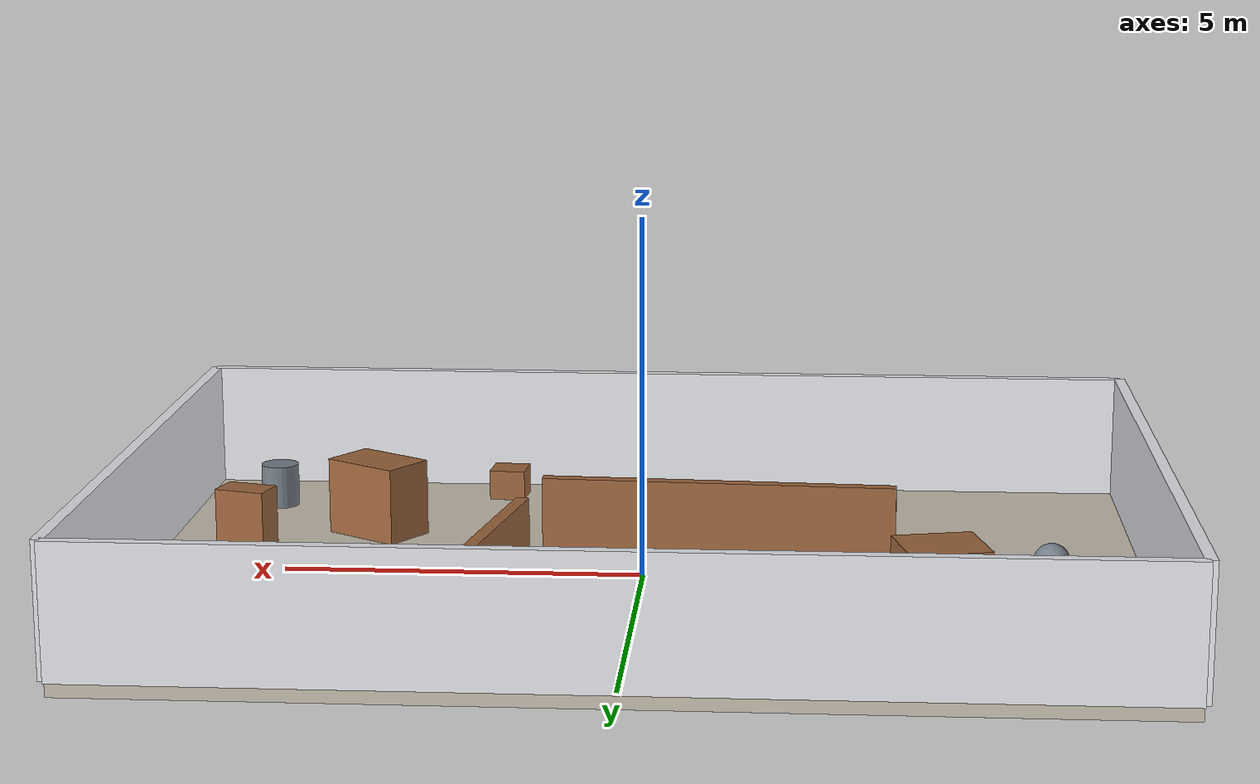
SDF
<?xml version='1.0' encoding='utf-8'?>
<sdf version="1.7">
  <world name="flat_1">
    <gravity>0 0 -9.8</gravity>
    <plugin name="gazebo_ros_state" filename="libgazebo_ros_state.so">
      <ros>
        <namespace>/gazebo</namespace>
      </ros>
    </plugin>
    <physics name="ode_physics" type="ode">
      <max_step_size>0.001</max_step_size>
      <real_time_factor>1</real_time_factor>
      <real_time_update_rate>1000</real_time_update_rate>
      <ode>
        <solver>
          <type>quick</type>
          <iters>150</iters>
          <sor>1.3</sor>
        </solver>
        <constraints>
          <cfm>0</cfm>
          <erp>0.2</erp>
          <contact_max_correcting_vel>0.2</contact_max_correcting_vel>
          <contact_surface_layer>0.001</contact_surface_layer>
        </constraints>
      </ode>
    </physics>
    <light name="sun" type="directional">
      <pose>0 0 28 0 0 0</pose>
      <diffuse>0.92 0.91 0.88 1</diffuse>
      <specular>0.18 0.18 0.16 1</specular>
      <direction>-0.35 -0.28 -0.9</direction>
      <cast_shadows>true</cast_shadows>
    </light>
    <light name="fill" type="point">
      <pose>0 0 6 0 0 0</pose>
      <diffuse>0.35 0.36 0.34 1</diffuse>
      <specular>0.02 0.02 0.02 1</specular>
      <cast_shadows>false</cast_shadows>
      <attenuation>
        <range>80</range>
        <constant>0.5</constant>
        <linear>0.02</linear>
      </attenuation>
    </light>
    <scene>
      <ambient>0.50 0.49 0.47 1</ambient>
      <background>0.80 0.82 0.86 1</background>
    </scene>
    <gui fullscreen="false">
      <camera name="user_camera">
        <pose>9.8 -9 11.9 0 0.65 2.2</pose>
        <view_controller>orbit</view_controller>
      </camera>
    </gui>
    <model name="flat_1_structure">
      <static>true</static>
      <link name="structure">
        <collision name="floor_collision">
          <pose>0 0 -0.1 0 0 0</pose>
          <geometry>
            <box>
              <size>14 10 0.2</size>
            </box>
          </geometry>
          <max_contacts>40</max_contacts>
          <surface>
            <friction>
              <ode>
                <mu>2</mu>
                <mu2>2</mu2>
              </ode>
            </friction>
            <contact>
              <ode>
                <kp>1e7</kp>
                <kd>1000</kd>
                <max_vel>0.1</max_vel>
                <min_depth>0.001</min_depth>
              </ode>
            </contact>
          </surface>
        </collision>
        <visual name="floor_visual">
          <pose>0 0 -0.1 0 0 0</pose>
          <geometry>
            <box>
              <size>14 10 0.2</size>
            </box>
          </geometry>
          <material>
            <ambient>0.78 0.74 0.68 1</ambient>
            <diffuse>0.78 0.74 0.68 1</diffuse>
          </material>
        </visual>
        <collision name="partition_0_collision">
          <pose>-1 -1 0.55 0 0 -0.0541946256</pose>
          <geometry>
            <box>
              <size>5 0.18 1.1</size>
            </box>
          </geometry>
          <max_contacts>40</max_contacts>
          <surface>
            <friction>
              <ode>
                <mu>2</mu>
                <mu2>2</mu2>
              </ode>
            </friction>
            <contact>
              <ode>
                <kp>1e7</kp>
                <kd>1000</kd>
                <max_vel>0.1</max_vel>
                <min_depth>0.001</min_depth>
              </ode>
            </contact>
          </surface>
        </collision>
        <visual name="partition_0_visual">
          <pose>-1 -1 0.55 0 0 -0.0541946256</pose>
          <geometry>
            <box>
              <size>5 0.18 1.1</size>
            </box>
          </geometry>
          <material>
            <ambient>0.62 0.40 0.24 1</ambient>
            <diffuse>0.62 0.40 0.24 1</diffuse>
          </material>
        </visual>
        <collision name="partition_1_collision">
          <pose>2 2 0.55 0 0 -0.171529491</pose>
          <geometry>
            <box>
              <size>0.18 4 1.1</size>
            </box>
          </geometry>
          <max_contacts>40</max_contacts>
          <surface>
            <friction>
              <ode>
                <mu>2</mu>
                <mu2>2</mu2>
              </ode>
            </friction>
            <contact>
              <ode>
                <kp>1e7</kp>
                <kd>1000</kd>
                <max_vel>0.1</max_vel>
                <min_depth>0.001</min_depth>
              </ode>
            </contact>
          </surface>
        </collision>
        <visual name="partition_1_visual">
          <pose>2 2 0.55 0 0 -0.171529491</pose>
          <geometry>
            <box>
              <size>0.18 4 1.1</size>
            </box>
          </geometry>
          <material>
            <ambient>0.62 0.40 0.24 1</ambient>
            <diffuse>0.62 0.40 0.24 1</diffuse>
          </material>
        </visual>
        <collision name="partition_2_collision">
          <pose>-4 2 0.55 0 0 0.23472169</pose>
          <geometry>
            <box>
              <size>1.1 1 1.1</size>
            </box>
          </geometry>
          <max_contacts>40</max_contacts>
          <surface>
            <friction>
              <ode>
                <mu>2</mu>
                <mu2>2</mu2>
              </ode>
            </friction>
            <contact>
              <ode>
                <kp>1e7</kp>
                <kd>1000</kd>
                <max_vel>0.1</max_vel>
                <min_depth>0.001</min_depth>
              </ode>
            </contact>
          </surface>
        </collision>
        <visual name="partition_2_visual">
          <pose>-4 2 0.55 0 0 0.23472169</pose>
          <geometry>
            <box>
              <size>1.1 1 1.1</size>
            </box>
          </geometry>
          <material>
            <ambient>0.62 0.40 0.24 1</ambient>
            <diffuse>0.62 0.40 0.24 1</diffuse>
          </material>
        </visual>
        <collision name="partition_3_collision">
          <pose>4 -2 0.55 0 0 -0.581548264</pose>
          <geometry>
            <box>
              <size>1.2 0.8 1.1</size>
            </box>
          </geometry>
          <max_contacts>40</max_contacts>
          <surface>
            <friction>
              <ode>
                <mu>2</mu>
                <mu2>2</mu2>
              </ode>
            </friction>
            <contact>
              <ode>
                <kp>1e7</kp>
                <kd>1000</kd>
                <max_vel>0.1</max_vel>
                <min_depth>0.001</min_depth>
              </ode>
            </contact>
          </surface>
        </collision>
        <visual name="partition_3_visual">
          <pose>4 -2 0.55 0 0 -0.581548264</pose>
          <geometry>
            <box>
              <size>1.2 0.8 1.1</size>
            </box>
          </geometry>
          <material>
            <ambient>0.62 0.40 0.24 1</ambient>
            <diffuse>0.62 0.40 0.24 1</diffuse>
          </material>
        </visual>
        <collision name="boundary_0_collision">
          <pose>0 -5 0.9 0 0 0</pose>
          <geometry>
            <box>
              <size>14 0.16 1.8</size>
            </box>
          </geometry>
          <max_contacts>40</max_contacts>
          <surface>
            <friction>
              <ode>
                <mu>2</mu>
                <mu2>2</mu2>
              </ode>
            </friction>
            <contact>
              <ode>
                <kp>1e7</kp>
                <kd>1000</kd>
                <max_vel>0.1</max_vel>
                <min_depth>0.001</min_depth>
              </ode>
            </contact>
          </surface>
        </collision>
        <visual name="boundary_0_visual">
          <pose>0 -5 0.9 0 0 0</pose>
          <geometry>
            <box>
              <size>14 0.16 1.8</size>
            </box>
          </geometry>
          <material>
            <ambient>0.90 0.91 0.93 1</ambient>
            <diffuse>0.90 0.91 0.93 1</diffuse>
          </material>
        </visual>
        <collision name="boundary_1_collision">
          <pose>7 0 0.9 0 0 1.57079633</pose>
          <geometry>
            <box>
              <size>10 0.16 1.8</size>
            </box>
          </geometry>
          <max_contacts>40</max_contacts>
          <surface>
            <friction>
              <ode>
                <mu>2</mu>
                <mu2>2</mu2>
              </ode>
            </friction>
            <contact>
              <ode>
                <kp>1e7</kp>
                <kd>1000</kd>
                <max_vel>0.1</max_vel>
                <min_depth>0.001</min_depth>
              </ode>
            </contact>
          </surface>
        </collision>
        <visual name="boundary_1_visual">
          <pose>7 0 0.9 0 0 1.57079633</pose>
          <geometry>
            <box>
              <size>10 0.16 1.8</size>
            </box>
          </geometry>
          <material>
            <ambient>0.90 0.91 0.93 1</ambient>
            <diffuse>0.90 0.91 0.93 1</diffuse>
          </material>
        </visual>
        <collision name="boundary_2_collision">
          <pose>0 5 0.9 0 0 3.14159265</pose>
          <geometry>
            <box>
              <size>14 0.16 1.8</size>
            </box>
          </geometry>
          <max_contacts>40</max_contacts>
          <surface>
            <friction>
              <ode>
                <mu>2</mu>
                <mu2>2</mu2>
              </ode>
            </friction>
            <contact>
              <ode>
                <kp>1e7</kp>
                <kd>1000</kd>
                <max_vel>0.1</max_vel>
                <min_depth>0.001</min_depth>
              </ode>
            </contact>
          </surface>
        </collision>
        <visual name="boundary_2_visual">
          <pose>0 5 0.9 0 0 3.14159265</pose>
          <geometry>
            <box>
              <size>14 0.16 1.8</size>
            </box>
          </geometry>
          <material>
            <ambient>0.90 0.91 0.93 1</ambient>
            <diffuse>0.90 0.91 0.93 1</diffuse>
          </material>
        </visual>
        <collision name="boundary_3_collision">
          <pose>-7 0 0.9 0 0 -1.57079633</pose>
          <geometry>
            <box>
              <size>10 0.16 1.8</size>
            </box>
          </geometry>
          <max_contacts>40</max_contacts>
          <surface>
            <friction>
              <ode>
                <mu>2</mu>
                <mu2>2</mu2>
              </ode>
            </friction>
            <contact>
              <ode>
                <kp>1e7</kp>
                <kd>1000</kd>
                <max_vel>0.1</max_vel>
                <min_depth>0.001</min_depth>
              </ode>
            </contact>
          </surface>
        </collision>
        <visual name="boundary_3_visual">
          <pose>-7 0 0.9 0 0 -1.57079633</pose>
          <geometry>
            <box>
              <size>10 0.16 1.8</size>
            </box>
          </geometry>
          <material>
            <ambient>0.90 0.91 0.93 1</ambient>
            <diffuse>0.90 0.91 0.93 1</diffuse>
          </material>
        </visual>
        <collision name="irregular_prop_0_collision">
          <pose>5.69750134 -0.804655637 0.479934914 0 0 2.87605535</pose>
          <geometry>
            <box>
              <size>0.729971802 0.471865717 0.959869828</size>
            </box>
          </geometry>
          <max_contacts>40</max_contacts>
          <surface>
            <friction>
              <ode>
                <mu>2</mu>
                <mu2>2</mu2>
              </ode>
            </friction>
            <contact>
              <ode>
                <kp>1e7</kp>
                <kd>1000</kd>
                <max_vel>0.1</max_vel>
                <min_depth>0.001</min_depth>
              </ode>
            </contact>
          </surface>
        </collision>
        <visual name="irregular_prop_0_visual">
          <pose>5.69750134 -0.804655637 0.479934914 0 0 2.87605535</pose>
          <geometry>
            <box>
              <size>0.729971802 0.471865717 0.959869828</size>
            </box>
          </geometry>
          <material>
            <ambient>0.62 0.40 0.24 1</ambient>
            <diffuse>0.62 0.40 0.24 1</diffuse>
          </material>
        </visual>
        <collision name="irregular_prop_1_collision">
          <pose>5.74914193 -3.50669056 0.315881603 0 0 -1.03093843</pose>
          <geometry>
            <cylinder>
              <radius>0.2776947299777907</radius>
              <length>0.6317632056566452</length>
            </cylinder>
          </geometry>
          <max_contacts>40</max_contacts>
          <surface>
            <friction>
              <ode>
                <mu>2</mu>
                <mu2>2</mu2>
              </ode>
            </friction>
            <contact>
              <ode>
                <kp>1e7</kp>
                <kd>1000</kd>
                <max_vel>0.1</max_vel>
                <min_depth>0.001</min_depth>
              </ode>
            </contact>
          </surface>
        </collision>
        <visual name="irregular_prop_1_visual">
          <pose>5.74914193 -3.50669056 0.315881603 0 0 -1.03093843</pose>
          <geometry>
            <cylinder>
              <radius>0.2776947299777907</radius>
              <length>0.6317632056566452</length>
            </cylinder>
          </geometry>
          <material>
            <ambient>0.46 0.50 0.54 1</ambient>
            <diffuse>0.46 0.50 0.54 1</diffuse>
          </material>
        </visual>
        <collision name="irregular_prop_2_collision">
          <pose>-5.38120535 3.55645929 0.251932926 0 0 -2.47668672</pose>
          <geometry>
            <sphere>
              <radius>0.25193292620896474</radius>
            </sphere>
          </geometry>
          <max_contacts>40</max_contacts>
          <surface>
            <friction>
              <ode>
                <mu>2</mu>
                <mu2>2</mu2>
              </ode>
            </friction>
            <contact>
              <ode>
                <kp>1e7</kp>
                <kd>1000</kd>
                <max_vel>0.1</max_vel>
                <min_depth>0.001</min_depth>
              </ode>
            </contact>
          </surface>
        </collision>
        <visual name="irregular_prop_2_visual">
          <pose>-5.38120535 3.55645929 0.251932926 0 0 -2.47668672</pose>
          <geometry>
            <sphere>
              <radius>0.25193292620896474</radius>
            </sphere>
          </geometry>
          <material>
            <ambient>0.46 0.50 0.54 1</ambient>
            <diffuse>0.46 0.50 0.54 1</diffuse>
          </material>
        </visual>
        <collision name="irregular_prop_3_collision">
          <pose>0 0 0 0 0 0</pose>
          <geometry>
            <mesh>
              <uri>3DModel/flat/surfaces/flat_1_irregular_prop_3.stl</uri>
            </mesh>
          </geometry>
          <max_contacts>40</max_contacts>
          <surface>
            <friction>
              <ode>
                <mu>8</mu>
                <mu2>8</mu2>
              </ode>
            </friction>
            <contact>
              <ode>
                <kp>1e7</kp>
                <kd>1000</kd>
                <max_vel>0.1</max_vel>
                <min_depth>0.001</min_depth>
              </ode>
            </contact>
          </surface>
        </collision>
        <visual name="irregular_prop_3_visual">
          <pose>0 0 0 0 0 0</pose>
          <geometry>
            <mesh>
              <uri>3DModel/flat/surfaces/flat_1_irregular_prop_3.stl</uri>
            </mesh>
          </geometry>
          <material>
            <ambient>0.46 0.50 0.54 1</ambient>
            <diffuse>0.46 0.50 0.54 1</diffuse>
          </material>
        </visual>
        <collision name="irregular_prop_4_collision">
          <pose>2.3208075 -4.23399917 0.22312887 0 0 1.49914452</pose>
          <geometry>
            <box>
              <size>0.525116083 0.532015966 0.44625774</size>
            </box>
          </geometry>
          <max_contacts>40</max_contacts>
          <surface>
            <friction>
              <ode>
                <mu>2</mu>
                <mu2>2</mu2>
              </ode>
            </friction>
            <contact>
              <ode>
                <kp>1e7</kp>
                <kd>1000</kd>
                <max_vel>0.1</max_vel>
                <min_depth>0.001</min_depth>
              </ode>
            </contact>
          </surface>
        </collision>
        <visual name="irregular_prop_4_visual">
          <pose>2.3208075 -4.23399917 0.22312887 0 0 1.49914452</pose>
          <geometry>
            <box>
              <size>0.525116083 0.532015966 0.44625774</size>
            </box>
          </geometry>
          <material>
            <ambient>0.62 0.40 0.24 1</ambient>
            <diffuse>0.62 0.40 0.24 1</diffuse>
          </material>
        </visual>
        <collision name="irregular_prop_5_collision">
          <pose>5.94318635 1.22265651 0.289387765 0 0 2.11746065</pose>
          <geometry>
            <cylinder>
              <radius>0.41407419197462914</radius>
              <length>0.5787755296169175</length>
            </cylinder>
          </geometry>
          <max_contacts>40</max_contacts>
          <surface>
            <friction>
              <ode>
                <mu>2</mu>
                <mu2>2</mu2>
              </ode>
            </friction>
            <contact>
              <ode>
                <kp>1e7</kp>
                <kd>1000</kd>
                <max_vel>0.1</max_vel>
                <min_depth>0.001</min_depth>
              </ode>
            </contact>
          </surface>
        </collision>
        <visual name="irregular_prop_5_visual">
          <pose>5.94318635 1.22265651 0.289387765 0 0 2.11746065</pose>
          <geometry>
            <cylinder>
              <radius>0.41407419197462914</radius>
              <length>0.5787755296169175</length>
            </cylinder>
          </geometry>
          <material>
            <ambient>0.46 0.50 0.54 1</ambient>
            <diffuse>0.46 0.50 0.54 1</diffuse>
          </material>
        </visual>
        <collision name="irregular_prop_6_collision">
          <pose>-5.62027802 -0.168780967 0.257146129 0 0 0.084597987</pose>
          <geometry>
            <sphere>
              <radius>0.25714612891511057</radius>
            </sphere>
          </geometry>
          <max_contacts>40</max_contacts>
          <surface>
            <friction>
              <ode>
                <mu>2</mu>
                <mu2>2</mu2>
              </ode>
            </friction>
            <contact>
              <ode>
                <kp>1e7</kp>
                <kd>1000</kd>
                <max_vel>0.1</max_vel>
                <min_depth>0.001</min_depth>
              </ode>
            </contact>
          </surface>
        </collision>
        <visual name="irregular_prop_6_visual">
          <pose>-5.62027802 -0.168780967 0.257146129 0 0 0.084597987</pose>
          <geometry>
            <sphere>
              <radius>0.25714612891511057</radius>
            </sphere>
          </geometry>
          <material>
            <ambient>0.46 0.50 0.54 1</ambient>
            <diffuse>0.46 0.50 0.54 1</diffuse>
          </material>
        </visual>
      </link>
    </model>
  </world>
</sdf>
